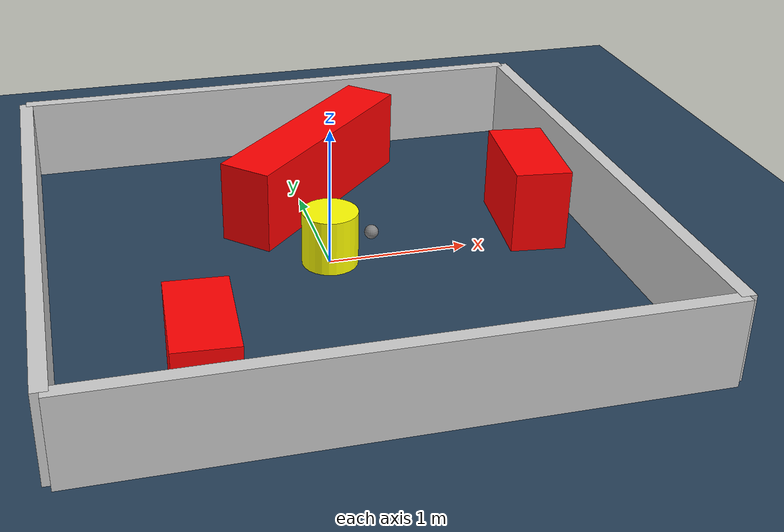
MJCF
<?xml version="1.0" ?>
<mujoco model="generated_environment">
  <option timestep="0.01" integrator="RK4" cone="elliptic"/>
  <default>
    <geom density="1"/>
  </default>
  <asset>
    <texture builtin="gradient" height="3072" rgb1="0.3 0.5 0.7" rgb2="0 0 0" type="skybox" width="512"/>
    <texture builtin="checker" height="300" mark="edge" markrgb="0.8 0.8 0.8" name="groundplane" rgb1="0.2 0.3 0.4" rgb2="0.1 0.2 0.3" type="2d" width="300"/>
    <material name="groundplane" reflectance="0.2" texrepeat="5 5" texture="groundplane" texuniform="true"/>
    <material name="robot" rgba="0.0 1.0 0.0 1"/>
  </asset>
  <worldbody>
    <light dir="0 0 -1" directional="true" pos="0 0 1.5"/>
    <geom condim="4" friction="1.0 0.005 0.001" material="groundplane" name="floor" size="0 0 0.05" type="plane"/>
    <body name="walls">
      <geom name="wall_1" condim="4" pos="-2.0 0.0 0.3" rgba="0.800000011920929 0.800000011920929 0.800000011920929 1.0" size="0.05 2.0 0.3" type="box"/>
      <geom name="wall_2" condim="4" pos="2.0 0.0 0.3" rgba="0.800000011920929 0.800000011920929 0.800000011920929 1.0" size="0.05 2.0 0.3" type="box"/>
      <geom name="wall_3" condim="4" pos="0.0 -2.0 0.3" rgba="0.800000011920929 0.800000011920929 0.800000011920929 1.0" size="2.0 0.05 0.3" type="box"/>
      <geom name="wall_4" condim="4" pos="0.0 2.0 0.3" rgba="0.800000011920929 0.800000011920929 0.800000011920929 1.0" size="2.0 0.05 0.3" type="box"/>
    </body>
    <body name="robot">
      <joint name="joint_x" type="slide" pos="0 0 0" axis="1 0 0"/>
      <joint name="joint_y" type="slide" pos="0 0 0" axis="0 1 0"/>
      <geom name="robot" type="sphere" pos="0.3 0.0 0.2" size="0.05" mass="5." friction="1.0 0.005 0.0001" condim="4" rgba="0.5 0.5 0.5 1.0"/>
      <site name="sensor_ball"/>
    </body>
    <body name="obstacle_movable_1">
      <geom name="obstacle_movable_1" condim="4" pos="0.0 0.0 0.2" euler="0 0 0.0" friction="1.0 0.005 0.001" rgba="1.0 1.0 0.0 1.0" size="0.2 0.2 0.0" type="cylinder" mass="0.1"/>
      <joint type="free"/>
    </body>
    <body name="obstacle_2_static">
      <geom name="obstacle_2_static" condim="4" pos="-1.096227818257652 -1.4346772887469021 0.3" euler="0 0 86.55262551267337" friction="1.0 0.005 0.001" rgba="1 0 0 1" size="0.3840946642539651 0.2 0.3" type="box"/>
    </body>
    <body name="obstacle_3_static">
      <geom name="obstacle_3_static" condim="4" pos="1.5418024205395717 0.21591606831198296 0.3" euler="0 0 263.57736582582044" friction="1.0 0.005 0.001" rgba="1 0 0 1" size="0.4051724017021806 0.2 0.3" type="box"/>
    </body>
    <body name="obstacle_4_static">
      <geom name="obstacle_4_static" condim="4" pos="0.1017402343855407 1.0238978685422084 0.3" euler="0 0 45.37133472525822" friction="1.0 0.005 0.001" rgba="1 0 0 1" size="0.9043768188883514 0.2 0.3" type="box"/>
    </body>
  </worldbody>
  <actuator>
    <motor name="actuator_x" joint="joint_x" gear="1" ctrlrange="-1 1"/>
    <motor name="actuator_y" joint="joint_y" gear="1" ctrlrange="-1 1"/>
  </actuator>
</mujoco>
